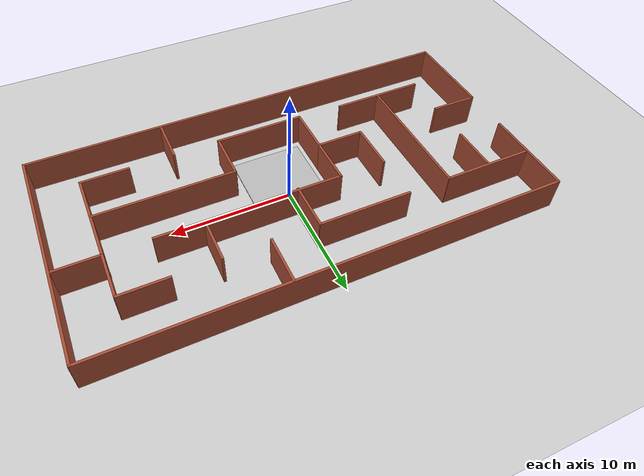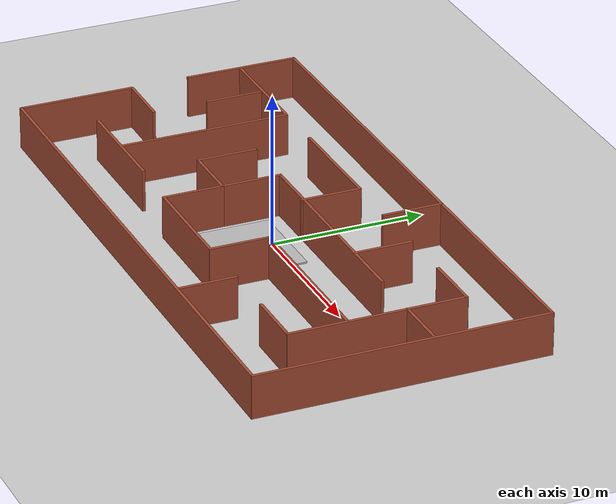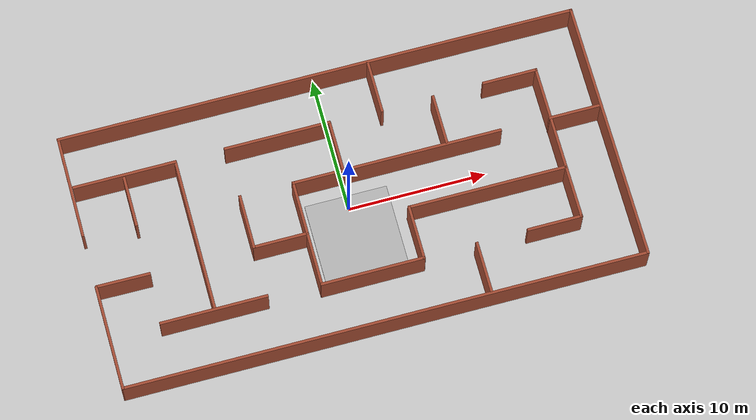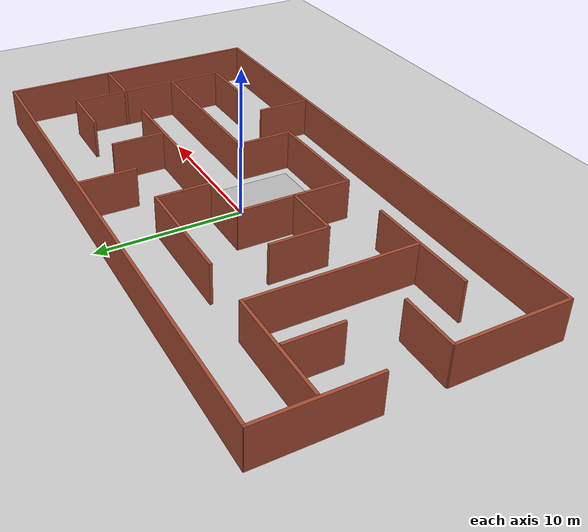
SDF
<sdf version="1.6">
 <world name="default">
  <light name="sun" type="directional">
   <pose>0 0 10 0 -0 0</pose>
   <diffuse>0.8 0.8 0.8 1</diffuse>
   <specular>0.2 0.2 0.2 1</specular>
   <attenuation>
    <range>1000</range>
    <constant>0.9</constant>
    <linear>0.01</linear>
    <quadratic>0.001</quadratic>
   </attenuation>
   <direction>-0.5 0.1 -0.9</direction>
  </light>
  <model name="ground_plane">
   <static>1</static>
   <link name="link">
    <collision name="collision">
     <geometry><plane><normal>0 0 1</normal><size>300 300</size></plane></geometry>
     <surface><friction><ode><mu>100</mu><mu2>50</mu2></ode></friction></surface>
    </collision>
    <visual name="visual">
     <cast_shadows>0</cast_shadows>
     <geometry><plane><normal>0 0 1</normal><size>300 300</size></plane></geometry>
     <material>
      <script><uri>file://media/materials/scripts/gazebo.material</uri><name>Gazebo/Grey</name></script>
     </material>
    </visual>
   </link>
  </model>
  <gravity>0 0 -9.8</gravity>
  <magnetic_field>6e-06 2.3e-05 -4.2e-05</magnetic_field>
  <atmosphere type="adiabatic"/>
  <physics name="default_physics" default="0" type="ode">
   <max_step_size>0.001</max_step_size>
   <real_time_factor>1</real_time_factor>
   <real_time_update_rate>1000</real_time_update_rate>
  </physics>
  <scene><ambient>0.4 0.4 0.4 1</ambient><background>0.7 0.7 0.7 1</background><shadows>1</shadows></scene>
  <spherical_coordinates>
   <surface_model>EARTH_WGS84</surface_model>
   <latitude_deg>0</latitude_deg>
   <longitude_deg>0</longitude_deg>
   <elevation>0</elevation>
   <heading_deg>0</heading_deg>
  </spherical_coordinates>
  <include><uri>model://landing1</uri><pose>0 -5 0 0 1.57 1.57</pose></include>
  <model name="ceiling">
   <link name="link">
    <inertial>
     <mass>100000</mass>
     <inertia><ixx>100000</ixx><ixy>0</ixy><ixz>0</ixz><iyy>100000</iyy><iyz>0</iyz><izz>100000</izz></inertia>
    </inertial>
    <collision name="collision">
     <geometry><box><size>300 300 0.5</size></box></geometry>
     <friction><ode><mu>1</mu><mu2>1</mu2></ode></friction>
     <contact><ode><kp>1e+07</kp><kd>1</kd><min_depth>0.001</min_depth><max_vel>0.1</max_vel></ode></contact>
    </collision>
   </link>
   <pose>0 0 5 0 0 0</pose>
  </model>
  <model name="map1">
   <pose>0.17513 0.038144 -0.008587 0 -0 0</pose>
   <link name="Wall_0">
    <collision name="Wall_0_Collision">
     <geometry><box><size>37.75 0.2 3</size></box></geometry>
     <pose>0 0 1.25 0 -0 0</pose>
    </collision>
    <visual name="Wall_0_Visual">
     <pose>0 0 1.25 0 -0 0</pose>
     <geometry><box><size>37.75 0.2 3</size></box></geometry>
     <material>
      <script><uri>file://media/materials/scripts/gazebo.material</uri><name>Gazebo/Bricks</name></script>
      <ambient>1 1 1 1</ambient>
     </material>
     <meta><layer>0</layer></meta>
    </visual>
    <pose>-4e-05 9.42504 0 0 -0 0</pose>
   </link>
   <link name="Wall_1">
    <collision name="Wall_1_Collision">
     <geometry><box><size>19 0.2 3</size></box></geometry>
     <pose>0 0 1.25 0 -0 0</pose>
    </collision>
    <visual name="Wall_1_Visual">
     <pose>0 0 1.25 0 -0 0</pose>
     <geometry><box><size>19 0.2 3</size></box></geometry>
     <material>
      <script><uri>file://media/materials/scripts/gazebo.material</uri><name>Gazebo/Bricks</name></script>
      <ambient>1 1 1 1</ambient>
     </material>
     <meta><layer>0</layer></meta>
    </visual>
    <pose>18.8 4e-05 0 0 -0 -1.5708</pose>
   </link>
   <link name="Wall_11">
    <collision name="Wall_11_Collision">
     <geometry><box><size>7.75 0.2 3</size></box></geometry>
     <pose>0 0 1.25 0 -0 0</pose>
    </collision>
    <visual name="Wall_11_Visual">
     <pose>0 0 1.25 0 -0 0</pose>
     <geometry><box><size>7.75 0.2 3</size></box></geometry>
     <material>
      <script><uri>file://media/materials/scripts/gazebo.material</uri><name>Gazebo/Bricks</name></script>
      <ambient>1 1 1 1</ambient>
     </material>
     <meta><layer>0</layer></meta>
    </visual>
    <pose>-11.3313 -5.55232 0 0 -0 0</pose>
   </link>
   <link name="Wall_13">
    <collision name="Wall_13_Collision">
     <geometry><box><size>3.75 0.2 3</size></box></geometry>
     <pose>0 0 1.25 0 -0 0</pose>
    </collision>
    <visual name="Wall_13_Visual">
     <pose>0 0 1.25 0 -0 0</pose>
     <geometry><box><size>3.75 0.2 3</size></box></geometry>
     <material>
      <script><uri>file://media/materials/scripts/gazebo.material</uri><name>Gazebo/Bricks</name></script>
      <ambient>1 1 1 1</ambient>
     </material>
     <meta><layer>0</layer></meta>
    </visual>
    <pose>-15.0099 3.64433 0 0 -0 -1.5708</pose>
   </link>
   <link name="Wall_15">
    <collision name="Wall_15_Collision">
     <geometry><box><size>7.75 0.2 3</size></box></geometry>
     <pose>0 0 1.25 0 -0 0</pose>
    </collision>
    <visual name="Wall_15_Visual">
     <pose>0 0 1.25 0 -0 0</pose>
     <geometry><box><size>7.75 0.2 3</size></box></geometry>
     <material>
      <script><uri>file://media/materials/scripts/gazebo.material</uri><name>Gazebo/Bricks</name></script>
      <ambient>1 1 1 1</ambient>
     </material>
     <meta><layer>0</layer></meta>
    </visual>
    <pose>-3.84702 5.69433 0 0 -0 0</pose>
   </link>
   <link name="Wall_16">
    <collision name="Wall_16_Collision">
     <geometry><box><size>4 0.2 3</size></box></geometry>
     <pose>0 0 1.25 0 -0 0</pose>
    </collision>
    <visual name="Wall_16_Visual">
     <pose>0 0 1.25 0 -0 0</pose>
     <geometry><box><size>4 0.2 3</size></box></geometry>
     <material>
      <script><uri>file://media/materials/scripts/gazebo.material</uri><name>Gazebo/Bricks</name></script>
      <ambient>1 1 1 1</ambient>
     </material>
     <meta><layer>0</layer></meta>
    </visual>
    <pose>-0.04702 3.76933 0 0 -0 -1.5708</pose>
   </link>
   <link name="Wall_18">
    <collision name="Wall_18_Collision">
     <geometry><box><size>4 0.2 3</size></box></geometry>
     <pose>0 0 1.25 0 -0 0</pose>
    </collision>
    <visual name="Wall_18_Visual">
     <pose>0 0 1.25 0 -0 0</pose>
     <geometry><box><size>4 0.2 3</size></box></geometry>
     <material>
      <script><uri>file://media/materials/scripts/gazebo.material</uri><name>Gazebo/Bricks</name></script>
      <ambient>1 1 1 1</ambient>
     </material>
     <meta><layer>0</layer></meta>
    </visual>
    <pose>-7.52565 0.047414 0 0 -0 -1.5708</pose>
   </link>
   <link name="Wall_19">
    <collision name="Wall_19_Collision">
     <geometry><box><size>4 0.2 3</size></box></geometry>
     <pose>0 0 1.25 0 -0 0</pose>
    </collision>
    <visual name="Wall_19_Visual">
     <pose>0 0 1.25 0 -0 0</pose>
     <geometry><box><size>4 0.2 3</size></box></geometry>
     <material>
      <script><uri>file://media/materials/scripts/gazebo.material</uri><name>Gazebo/Bricks</name></script>
      <ambient>1 1 1 1</ambient>
     </material>
     <meta><layer>0</layer></meta>
    </visual>
    <pose>-5.60065 -1.87759 0 0 -0 0</pose>
   </link>
   <link name="Wall_2">
    <collision name="Wall_2_Collision">
     <geometry><box><size>37.6618 0.2 3</size></box></geometry>
     <pose>0 0 1.25 0 -0 0</pose>
    </collision>
    <visual name="Wall_2_Visual">
     <pose>0 0 1.25 0 -0 0</pose>
     <geometry><box><size>37.6618 0.2 3</size></box></geometry>
     <material>
      <script><uri>file://media/materials/scripts/gazebo.material</uri><name>Gazebo/Bricks</name></script>
      <ambient>1 1 1 1</ambient>
     </material>
     <meta><layer>0</layer></meta>
    </visual>
    <pose>0.044049 -9.40473 0 0 -0 3.14051</pose>
   </link>
   <link name="Wall_20">
    <collision name="Wall_20_Collision">
     <geometry><box><size>4 0.2 3</size></box></geometry>
     <pose>0 0 1.25 0 -0 0</pose>
    </collision>
    <visual name="Wall_20_Visual">
     <pose>0 0 1.25 0 -0 0</pose>
     <geometry><box><size>4 0.2 3</size></box></geometry>
     <material>
      <script><uri>file://media/materials/scripts/gazebo.material</uri><name>Gazebo/Bricks</name></script>
      <ambient>1 1 1 1</ambient>
     </material>
     <meta><layer>0</layer></meta>
    </visual>
    <pose>-3.67565 0.047414 0 0 -0 1.5708</pose>
   </link>
   <link name="Wall_21">
    <collision name="Wall_21_Collision">
     <geometry><box><size>15.25 0.2 3</size></box></geometry>
     <pose>0 0 1.25 0 -0 0</pose>
    </collision>
    <visual name="Wall_21_Visual">
     <pose>0 0 1.25 0 -0 0</pose>
     <geometry><box><size>15.25 0.2 3</size></box></geometry>
     <material>
      <script><uri>file://media/materials/scripts/gazebo.material</uri><name>Gazebo/Bricks</name></script>
      <ambient>1 1 1 1</ambient>
     </material>
     <meta><layer>0</layer></meta>
    </visual>
    <pose>3.87435 1.97241 0 0 -0 0</pose>
   </link>
   <link name="Wall_23">
    <collision name="Wall_23_Collision">
     <geometry><box><size>4 0.2 3</size></box></geometry>
     <pose>0 0 1.25 0 -0 0</pose>
    </collision>
    <visual name="Wall_23_Visual">
     <pose>0 0 1.25 0 -0 0</pose>
     <geometry><box><size>4 0.2 3</size></box></geometry>
     <material>
      <script><uri>file://media/materials/scripts/gazebo.material</uri><name>Gazebo/Bricks</name></script>
      <ambient>1 1 1 1</ambient>
     </material>
     <meta><layer>0</layer></meta>
    </visual>
    <pose>-3.67565 -3.80259 0 0 -0 -1.5708</pose>
   </link>
   <link name="Wall_24">
    <collision name="Wall_24_Collision">
     <geometry><box><size>7.5 0.2 3</size></box></geometry>
     <pose>0 0 1.25 0 -0 0</pose>
    </collision>
    <visual name="Wall_24_Visual">
     <pose>0 0 1.25 0 -0 0</pose>
     <geometry><box><size>7.5 0.2 3</size></box></geometry>
     <material>
      <script><uri>file://media/materials/scripts/gazebo.material</uri><name>Gazebo/Bricks</name></script>
      <ambient>1 1 1 1</ambient>
     </material>
     <meta><layer>0</layer></meta>
    </visual>
    <pose>-0.000654 -5.72759 0 0 -0 0</pose>
   </link>
   <link name="Wall_25">
    <collision name="Wall_25_Collision">
     <geometry><box><size>4 0.2 3</size></box></geometry>
     <pose>0 0 1.25 0 -0 0</pose>
    </collision>
    <visual name="Wall_25_Visual">
     <pose>0 0 1.25 0 -0 0</pose>
     <geometry><box><size>4 0.2 3</size></box></geometry>
     <material>
      <script><uri>file://media/materials/scripts/gazebo.material</uri><name>Gazebo/Bricks</name></script>
      <ambient>1 1 1 1</ambient>
     </material>
     <meta><layer>0</layer></meta>
    </visual>
    <pose>3.67435 -3.80259 0 0 -0 1.5708</pose>
   </link>
   <link name="Wall_26">
    <collision name="Wall_26_Collision">
     <geometry><box><size>11.5 0.2 3</size></box></geometry>
     <pose>0 0 1.25 0 -0 0</pose>
    </collision>
    <visual name="Wall_26_Visual">
     <pose>0 0 1.25 0 -0 0</pose>
     <geometry><box><size>11.5 0.2 3</size></box></geometry>
     <material>
      <script><uri>file://media/materials/scripts/gazebo.material</uri><name>Gazebo/Bricks</name></script>
      <ambient>1 1 1 1</ambient>
     </material>
     <meta><layer>0</layer></meta>
    </visual>
    <pose>9.34935 -1.87759 0 0 -0 0</pose>
   </link>
   <link name="Wall_28">
    <collision name="Wall_28_Collision">
     <geometry><box><size>3.75 0.2 3</size></box></geometry>
     <pose>0 0 1.25 0 -0 0</pose>
    </collision>
    <visual name="Wall_28_Visual">
     <pose>0 0 1.25 0 -0 0</pose>
     <geometry><box><size>3.75 0.2 3</size></box></geometry>
     <material>
      <script><uri>file://media/materials/scripts/gazebo.material</uri><name>Gazebo/Bricks</name></script>
      <ambient>1 1 1 1</ambient>
     </material>
     <meta><layer>0</layer></meta>
    </visual>
    <pose>7.52382 3.85387 0 0 -0 -1.5708</pose>
   </link>
   <link name="Wall_3">
    <collision name="Wall_3_Collision">
     <geometry><box><size>7.6692 0.2 3</size></box></geometry>
     <pose>0 0 1.25 0 -0 0</pose>
    </collision>
    <visual name="Wall_3_Visual">
     <pose>0 0 1.25 0 -0 0</pose>
     <geometry><box><size>7.6692 0.2 3</size></box></geometry>
     <material>
      <script><uri>file://media/materials/scripts/gazebo.material</uri><name>Gazebo/Bricks</name></script>
      <ambient>1 1 1 1</ambient>
     </material>
     <meta><layer>0</layer></meta>
    </visual>
    <pose>-18.7725 -5.62496 0 0 -0 1.57618</pose>
   </link>
   <link name="Wall_30">
    <collision name="Wall_30_Collision">
     <geometry><box><size>4 0.2 3</size></box></geometry>
     <pose>0 0 1.25 0 -0 0</pose>
    </collision>
    <visual name="Wall_30_Visual">
     <pose>0 0 1.25 0 -0 0</pose>
     <geometry><box><size>4 0.2 3</size></box></geometry>
     <material>
      <script><uri>file://media/materials/scripts/gazebo.material</uri><name>Gazebo/Bricks</name></script>
      <ambient>1 1 1 1</ambient>
     </material>
     <meta><layer>0</layer></meta>
    </visual>
    <pose>13.1707 5.69433 0 0 -0 0</pose>
   </link>
   <link name="Wall_31">
    <collision name="Wall_31_Collision">
     <geometry><box><size>11.5 0.2 3</size></box></geometry>
     <pose>0 0 1.25 0 -0 0</pose>
    </collision>
    <visual name="Wall_31_Visual">
     <pose>0 0 1.25 0 -0 0</pose>
     <geometry><box><size>11.5 0.2 3</size></box></geometry>
     <material>
      <script><uri>file://media/materials/scripts/gazebo.material</uri><name>Gazebo/Bricks</name></script>
      <ambient>1 1 1 1</ambient>
     </material>
     <meta><layer>0</layer></meta>
    </visual>
    <pose>15.0957 0.019328 0 0 -0 -1.5708</pose>
   </link>
   <link name="Wall_32">
    <collision name="Wall_32_Collision">
     <geometry><box><size>4 0.2 3</size></box></geometry>
     <pose>0 0 1.25 0 -0 0</pose>
    </collision>
    <visual name="Wall_32_Visual">
     <pose>0 0 1.25 0 -0 0</pose>
     <geometry><box><size>4 0.2 3</size></box></geometry>
     <material>
      <script><uri>file://media/materials/scripts/gazebo.material</uri><name>Gazebo/Bricks</name></script>
      <ambient>1 1 1 1</ambient>
     </material>
     <meta><layer>0</layer></meta>
    </visual>
    <pose>13.1707 -5.65567 0 0 -0 3.14159</pose>
   </link>
   <link name="Wall_34">
    <collision name="Wall_34_Collision">
     <geometry><box><size>3.75 0.2 3</size></box></geometry>
     <pose>0 0 1.25 0 -0 0</pose>
    </collision>
    <visual name="Wall_34_Visual">
     <pose>0 0 1.25 0 -0 0</pose>
     <geometry><box><size>3.75 0.2 3</size></box></geometry>
     <material>
      <script><uri>file://media/materials/scripts/gazebo.material</uri><name>Gazebo/Bricks</name></script>
      <ambient>1 1 1 1</ambient>
     </material>
     <meta><layer>0</layer></meta>
    </visual>
    <pose>16.8486 1.93196 0 0 -0 0</pose>
   </link>
   <link name="Wall_36">
    <collision name="Wall_36_Collision">
     <geometry><box><size>3.75 0.2 3</size></box></geometry>
     <pose>0 0 1.25 0 -0 0</pose>
    </collision>
    <visual name="Wall_36_Visual">
     <pose>0 0 1.25 0 -0 0</pose>
     <geometry><box><size>3.75 0.2 3</size></box></geometry>
     <material>
      <script><uri>file://media/materials/scripts/gazebo.material</uri><name>Gazebo/Bricks</name></script>
      <ambient>1 1 1 1</ambient>
     </material>
     <meta><layer>0</layer></meta>
    </visual>
    <pose>7.52489 -7.4661 0 0 -0 1.5708</pose>
   </link>
   <link name="Wall_38">
    <collision name="Wall_38_Collision">
     <geometry><box><size>4 0.2 3</size></box></geometry>
     <pose>0 0 1.25 0 -0 0</pose>
    </collision>
    <visual name="Wall_38_Visual">
     <pose>0 0 1.25 0 -0 0</pose>
     <geometry><box><size>4 0.2 3</size></box></geometry>
     <material>
      <script><uri>file://media/materials/scripts/gazebo.material</uri><name>Gazebo/Bricks</name></script>
      <ambient>1 1 1 1</ambient>
     </material>
     <meta><layer>0</layer></meta>
    </visual>
    <pose>3.75593 7.4732 0 0 -0 -1.5708</pose>
   </link>
   <link name="Wall_4">
    <collision name="Wall_4_Collision">
     <geometry><box><size>3.91204 0.2 3</size></box></geometry>
     <pose>0 0 1.25 0 -0 0</pose>
    </collision>
    <visual name="Wall_4_Visual">
     <pose>0 0 1.25 0 -0 0</pose>
     <geometry><box><size>3.91204 0.2 3</size></box></geometry>
     <material>
      <script><uri>file://media/materials/scripts/gazebo.material</uri><name>Gazebo/Bricks</name></script>
      <ambient>1 1 1 1</ambient>
     </material>
     <meta><layer>0</layer></meta>
    </visual>
    <pose>-16.8714 -1.84519 0 0 -0 -0.010754</pose>
   </link>
   <link name="Wall_6">
    <collision name="Wall_6_Collision">
     <geometry><box><size>7.5 0.2 3</size></box></geometry>
     <pose>0 0 1.25 0 -0 0</pose>
    </collision>
    <visual name="Wall_6_Visual">
     <pose>0 0 1.25 0 -0 0</pose>
     <geometry><box><size>7.5 0.2 3</size></box></geometry>
     <material>
      <script><uri>file://media/materials/scripts/gazebo.material</uri><name>Gazebo/Bricks</name></script>
      <ambient>1 1 1 1</ambient>
     </material>
     <meta><layer>0</layer></meta>
    </visual>
    <pose>-18.8 5.75004 0 0 -0 -1.5708</pose>
   </link>
   <link name="Wall_8">
    <collision name="Wall_8_Collision">
     <geometry><box><size>7.5 0.2 3</size></box></geometry>
     <pose>0 0 1.25 0 -0 0</pose>
    </collision>
    <visual name="Wall_8_Visual">
     <pose>0 0 1.25 0 -0 0</pose>
     <geometry><box><size>7.5 0.2 3</size></box></geometry>
     <material>
      <script><uri>file://media/materials/scripts/gazebo.material</uri><name>Gazebo/Bricks</name></script>
      <ambient>1 1 1 1</ambient>
     </material>
     <meta><layer>0</layer></meta>
    </visual>
    <pose>-14.9263 5.6653 0 0 -0 0</pose>
   </link>
   <link name="Wall_9">
    <collision name="Wall_9_Collision">
     <geometry><box><size>11.25 0.2 3</size></box></geometry>
     <pose>0 0 1.25 0 -0 0</pose>
    </collision>
    <visual name="Wall_9_Visual">
     <pose>0 0 1.25 0 -0 0</pose>
     <geometry><box><size>11.25 0.2 3</size></box></geometry>
     <material>
      <script><uri>file://media/materials/scripts/gazebo.material</uri><name>Gazebo/Bricks</name></script>
      <ambient>1 1 1 1</ambient>
     </material>
     <meta><layer>0</layer></meta>
    </visual>
    <pose>-11.2513 0.115295 0 0 -0 -1.5708</pose>
   </link>
   <static>1</static>
  </model>
 </world>
</sdf>

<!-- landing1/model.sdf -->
<sdf version="1.6">
  <model name="landing1">
    <static>true</static>
    <link name="link">
      <visual name="visual">
        <geometry>
          <mesh>
            <uri>model://landing1/meshes/landing1.dae</uri>
          <scale>12.0 12.0 12.0</scale></mesh>
        </geometry>
      </visual>
    </link>
  </model>
</sdf>
